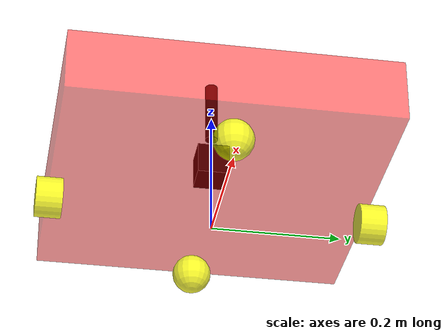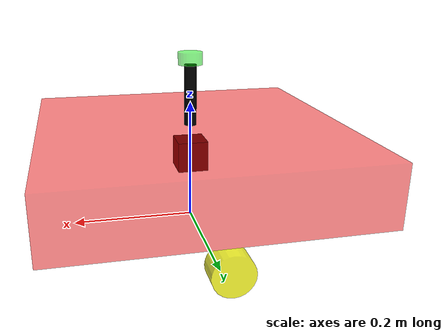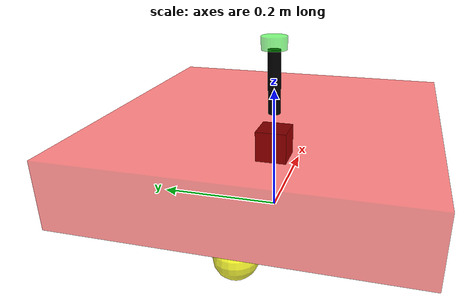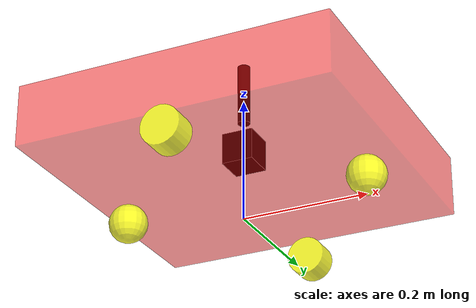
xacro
<?xml version="1.0"?>

<robot name="fishbot" xmlns:xacro="http://www.ros.org/wiki/xacro">

    <!-- 包含机器人的身体部件 -->
    <xacro:include filename="base.xacro"/>
    <xacro:include filename="imu.xacro"/>
    <xacro:include filename="laser.xacro"/>
    <xacro:include filename="drive_wheel.xacro"/>
    <xacro:include filename="caster_wheel.xacro"/>
    <xacro:include filename="fishbot.ros2_control.xacro"/>

    <!-- 调用宏 -->
    <xacro:base_xacro length="0.5" width="0.5" height="0.1"/> <!-- 机器人的身体部件 -->
    <xacro:imu_xacro xyz = "0 0 0"/> <!-- 机器人的IMU部件 -->
    <xacro:laser_xacro xyz = "0 0 0.1"/> <!-- 机器人的激光雷达部件 -->
    <xacro:drive_wheel_xacro wheel_name="left_wheel"   xyz = "0  0.25 -0.081"/> <!-- 左驱动轮，侧边中心 -->
    <xacro:drive_wheel_xacro wheel_name="right_wheel"  xyz = "0 -0.25 -0.081"/> <!-- 右驱动轮，侧边中心 -->
    <xacro:caster_wheel_xacro wheel_name="front_caster" xyz = " 0.2 0 -0.081"/> <!-- 前万向轮 -->
    <xacro:caster_wheel_xacro wheel_name="rear_caster"  xyz = "-0.2 0 -0.081"/> <!-- 后万向轮 -->

    <xacro:fishbot_ros2_control/>

    <!-- ==================== ros2_control 驱动插件 ==================== -->
    <gazebo>
        <plugin
            filename="libgz_ros2_control-system.so"
            name="gz_ros2_control::GazeboSimROS2ControlPlugin">
            <parameters>$(find robot_simulation)/config/ros2_control_params.yaml</parameters> <!--启动controller manager时加载的参数文件 -->
        </plugin>
    </gazebo>

    <!-- ==================== 差速驱动插件（已废弃，改用 ros2_control） ==================== -->

</robot>

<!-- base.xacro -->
<robot xmlns:xacro="http://www.ros.org/wiki/xacro">
    <xacro:macro name = "base_xacro" params = "length width height">
        <!-- 机器人的身体部件 -->
        <link name = "base_link">
            <!-- 部件的外观描述 -->
            <visual>
                <!-- 相对于它所属 link 原点的位置偏移 -->
                <origin xyz="0 0 0" rpy="0 0 0"/>
                <!-- 几何形状 -->
                <geometry>
                    <box size="${length} ${width} ${height}"/>   <!-- 长lengthm 宽widthm 高heightm -->
                </geometry>
                <!-- 材质颜色 -->
                <material name="red">
                    <color rgba="1 0 0 0.5"/>    <!-- 红 绿 蓝 透明度，范围0~1 -->
                </material>
            </visual>
             <!-- 碰撞体积 (与visual几何一致) -->
            <collision>
                <origin xyz="0 0 0" rpy="0 0 0"/>
                <geometry>
                    <box size="${length} ${width} ${height}"/>
                </geometry>
            </collision>
            <!-- 惯性 (质量与转动惯量，Gazebo仿真必需) -->
            <inertial>
                <mass value="5"/>
                <!-- 长方体转动惯量: Ixx=m/12*(y²+z²), Iyy=m/12*(x²+z²), Izz=m/12*(x²+y²) -->
                <inertia ixx="${5.0/12.0 * (width*width + height*height)}"
                         iyy="${5.0/12.0 * (length*length + height*height)}"
                         izz="${5.0/12.0 * (length*length + width*width)}"
                         ixy="0" ixz="0" iyz="0"/>
            </inertial>
        </link>

    <!-- 添加虚拟部件，使机器人轮子贴合地面 -->
    <link name = "base_footprint"/>

    <joint name = "base_footprint_joint" type = "fixed">
        <parent link = "base_footprint"/>
        <child link = "base_link"/>
        <origin xyz="0 0 0.112" rpy="0 0 0"/> <!-- base_link 在 base_footprint 上方 0.112m，轮子恰好贴地 -->
    </joint>

    </xacro:macro>
</robot>

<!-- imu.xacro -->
<robot xmlns:xacro="http://www.ros.org/wiki/xacro">
    <xacro:macro name = "imu_xacro" params = "xyz">
        <!-- 机器人的IMU部件 -->
        <link name = "imu_link">
            <!-- 部件的外观描述 -->
            <visual>
                <!-- 相对于它所属 link 原点的位置偏移 -->
                <origin xyz="0 0 0" rpy="0 0 0"/>
                <!-- 几何形状 -->
                <geometry>
                    <box size="0.05 0.05 0.05"/>
                </geometry>
                <!-- 材质颜色 -->
                <material name="black">
                    <color rgba="0 0 0 1"/>
                </material>
            </visual>
            <!-- 碰撞体积 (与visual几何一致) -->
            <collision>
                <origin xyz="0 0 0" rpy="0 0 0"/>
                <geometry>
                    <box size="0.05 0.05 0.05"/>
                </geometry>
            </collision>
            <!-- 惯性 (质量与转动惯量，Gazebo仿真必需) -->
            <inertial>
                <mass value="0.01"/>
                <!-- 正方体转动惯量: I = m/12*(a²+b²), 0.05³, m=0.01 -->
                <inertia ixx="0.00000417" iyy="0.00000417" izz="0.00000417"
                         ixy="0" ixz="0" iyz="0"/>
            </inertial>
        </link>

        <!-- 将IMU部件固定到机器人身体部件 -->
        <joint name = "imu_link_joint" type = "fixed">
            <parent link = "base_link"/>
            <child link = "imu_link"/>
            <origin xyz="${xyz}" rpy="0 0 0"/> <!-- child(imu_link) 相对于 parent(base_link) 的偏移 -->
        </joint>
    </xacro:macro>
</robot>

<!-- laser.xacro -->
<robot xmlns:xacro="http://www.ros.org/wiki/xacro">
    <xacro:macro name = "laser_xacro" params = "xyz">
        <!-- 雷达支撑杆部件 -->
        <link name = "laser_cylinder_link">
            <!-- 部件的外观描述 -->
            <visual>
                <!-- 相对于它所属 link 原点的位置偏移 -->
                <origin xyz="0 0 0" rpy="0 0 0"/>
                <!-- 几何形状 -->
                <geometry>
                    <cylinder radius = "0.01" length = "0.1"/>  <!-- 圆柱体：半径0.01m 高0.1m -->
                </geometry>
                <!-- 材质颜色 -->
                <material name="black">
                    <color rgba="0 0 0 1.0"/>
                </material>
            </visual>
            <!-- 碰撞体积 (与visual几何一致) -->
            <collision>
                <origin xyz="0 0 0" rpy="0 0 0"/>
                <geometry>
                    <cylinder radius="0.01" length="0.1"/>
                </geometry>
            </collision>
            <!-- 惯性 (质量与转动惯量，Gazebo仿真必需) -->
            <inertial>
                <mass value="0.1"/>
                <!-- 圆柱体转动惯量 (轴z: Izz=mr²/2, Ixx=Iyy=m(3r²+l²)/12, r=0.01, l=0.1) -->
                <inertia ixx="0.0000858" iyy="0.0000858" izz="0.000005"
                         ixy="0" ixz="0" iyz="0"/>
            </inertial>
        </link>

        <!-- 雷达部件 -->
        <link name = "laser_link">
            <!-- 部件的外观描述 -->
            <visual>
                <!-- 相对于它所属 link 原点的位置偏移 -->
                <origin xyz="0 0 0" rpy="0 0 0"/>
                <!-- 几何形状 -->
                <geometry>
                    <cylinder radius = "0.02" length = "0.02"/>  <!-- 圆柱体：半径0.02m 高0.02m -->
                </geometry>
                <!-- 材质颜色 -->
                <material name="green">
                    <color rgba="0 1 0 0.5"/>
                </material>
            </visual>
            <!-- 碰撞体积 (与visual几何一致) -->
            <collision>
                <origin xyz="0 0 0" rpy="0 0 0"/>
                <geometry>
                    <cylinder radius="0.02" length="0.02"/>
                </geometry>
            </collision>
            <!-- 惯性 (质量与转动惯量，Gazebo仿真必需) -->
            <inertial>
                <mass value="0.2"/>
                <!-- 圆柱体转动惯量 (轴z: Izz=mr²/2, Ixx=Iyy=m(3r²+l²)/12, r=0.02, l=0.02) -->
                <inertia ixx="0.0000267" iyy="0.0000267" izz="0.00004"
                         ixy="0" ixz="0" iyz="0"/>
            </inertial>
        </link>

        <!-- 将雷达固定到支撑杆 -->
        <joint name = "laser_joint" type = "fixed">
            <parent link = "laser_cylinder_link"/>
            <child link = "laser_link"/>
            <origin xyz="0 0 0.06" rpy="0 0 0"/> <!-- child(laser_link) 相对于 parent(laser_cylinder_link) 的偏移 -->
        </joint>

        <!-- 将雷达支撑杆固定到机器人身体 -->
        <joint name = "laser_cylinder_joint" type = "fixed">
            <parent link = "base_link"/>
            <child link = "laser_cylinder_link"/>
            <origin xyz="${xyz}" rpy="0 0 0"/> <!-- child(laser_cylinder_link) 相对于 parent(base_link) 的偏移 -->
        </joint>
        <gazebo reference="laser_cylinder_link">
            <visual>
                <material>
                    <ambient>0 0 1 1</ambient>
                    <diffuse>0 0 1 1</diffuse>
                    <specular>0.1 0.1 0.1 1</specular>
                    <emissive>0 0 0 1</emissive>
                </material>
            </visual>
        </gazebo>
        <gazebo reference="laser_link">
            <visual>
                <material>
                    <ambient>0 0 1 1</ambient>
                    <diffuse>0 0 1 1</diffuse>
                    <specular>0.1 0.1 0.1 1</specular>
                    <emissive>0 0 0 1</emissive>
                </material>
            </visual>
        </gazebo>
        <gazebo reference="laser_link">
            <sensor type="gpu_lidar" name="laser_sensor">
                <pose>0 0 0.15 0 0 0</pose>
                <topic>scan</topic>
                <update_rate>30</update_rate>
                <always_on>1</always_on>
                <visualize>true</visualize>
                <ray>
                    <scan>
                        <horizontal>
                            <samples>720</samples>
                            <resolution>1</resolution>
                            <min_angle>-3.1415</min_angle>
                            <max_angle>3.1415</max_angle>
                        </horizontal>
                    </scan>
                    <range>
                        <min>0.12</min>
                        <max>10.0</max>
                        <resolution>0.01</resolution>
                    </range>
                    <noise>
                        <type>gaussian</type>
                        <mean>0.0</mean>
                        <stddev>0.0</stddev>
                    </noise>
                </ray>
            </sensor>
        </gazebo>
    </xacro:macro>
</robot>

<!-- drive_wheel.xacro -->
<robot xmlns:xacro="http://www.ros.org/wiki/xacro">
    <xacro:macro name = "drive_wheel_xacro" params = "wheel_name xyz">
        <link name = "${wheel_name}_link">
            <!-- 部件的外观描述 -->
            <visual>
                <!-- 相对于它所属 link 原点的位置偏移 -->
                <!-- 1.5708弧度，表示绕X轴旋转90度，把竖直的圆柱体放平成轮子 -->
                <origin xyz="0 0 0" rpy="1.5708 0 0"/>
                <!-- 几何形状 -->
                <geometry>
                    <cylinder radius="0.031" length="0.04"/>   <!-- 半径0.031m 高0.04m -->
                </geometry>
                <!-- 材质颜色 -->
                <material name="yellow">
                    <color rgba="1 1 0 0.8"/>    <!-- 红 绿 蓝 透明度，范围0~1 -->
                </material>
            </visual>
            <!-- 碰撞体积 (与visual几何一致) -->
            <collision>
                <origin xyz="0 0 0" rpy="1.5708 0 0"/>
                <geometry>
                    <cylinder radius="0.031" length="0.04"/>
                </geometry>
            </collision>
            <!-- 惯性 (质量与转动惯量，Gazebo仿真必需) -->
            <inertial>
                <mass value="0.1"/>
                <!-- 圆柱体转动惯量 (r=0.031, l=0.04, 轴y: Iyy=mr²/2, Ixx=Izz=m(3r²+l²)/12) -->
                <inertia ixx="0.0000374" iyy="0.0000481" izz="0.0000374"
                         ixy="0" ixz="0" iyz="0"/>
            </inertial>
        </link>
        <joint name = "${wheel_name}_joint" type = "continuous">
            <parent link = "base_link"/>
            <child link = "${wheel_name}_link"/>
            <origin xyz="${xyz}" rpy="0 0 0"/> <!-- child(${${wheel_name}_link) 相对于 parent(base_link) 的偏移 -->
            <axis xyz="0 1 0"/> <!-- 轴向为y轴 -->
        </joint>
        <!-- Gazebo Fortress 驱动轮接触物理参数，防打滑陷地 -->
        <gazebo reference="${wheel_name}_link">
            <collision>
                <surface>
                    <contact>
                        <ode>
                            <mu>20.0</mu>     <!-- 滚动方向摩擦系数，越大越不打滑 -->
                            <mu2>20.0</mu2>   <!-- 横向侧滑摩擦系数 -->
                            <kp>10000000000.0</kp> <!-- 接触刚度，轮子硬度 -->
                            <kd>1.0</kd>      <!-- 接触阻尼，落地缓冲 -->
                        </ode>
                    </contact>
                </surface>
            </collision>
        </gazebo>
    </xacro:macro>
</robot>

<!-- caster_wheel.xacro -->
<robot xmlns:xacro="http://www.ros.org/wiki/xacro">
    <xacro:macro name = "caster_wheel_xacro" params = "wheel_name xyz">
        <link name = "${wheel_name}_link">
            <!-- 部件的外观描述 -->
            <visual>
                <!-- 相对于它所属 link 原点的位置偏移 -->
                <origin xyz="0 0 0" rpy="0 0 0"/>
                <!-- 几何形状 -->
                <geometry>
                    <sphere radius="0.031"/>   <!-- 半径0.031m -->
                </geometry>
                <!-- 材质颜色 -->
                <material name="yellow">
                    <color rgba="1 1 0 0.8"/>    <!-- 红 绿 蓝 透明度，范围0~1 -->
                </material>
            </visual>
            <!-- 碰撞体积 (与visual几何一致) -->
            <collision>
                <origin xyz="0 0 0" rpy="0 0 0"/>
                <geometry>
                    <sphere radius="0.031"/>
                </geometry>
            </collision>
            <!-- 惯性 (质量与转动惯量，Gazebo仿真必需) -->
            <inertial>
                <mass value="0.05"/>
                <!-- 球体转动惯量: I = 2/5*m*r², r=0.031, m=0.05 -->
                <inertia ixx="0.0000192" iyy="0.0000192" izz="0.0000192"
                         ixy="0" ixz="0" iyz="0"/>
            </inertial>
        </link>
        <joint name = "${wheel_name}_joint" type = "fixed">
            <parent link = "base_link"/>
            <child link = "${wheel_name}_link"/>
            <origin xyz="${xyz}" rpy="0 0 0"/> <!-- child(${${wheel_name}_link) 相对于 parent(base_link) 的偏移 -->
        </joint>
        <!-- Gazebo Fortress 万向轮接触物理参数，无摩擦可自由滑动 -->
        <gazebo reference="${wheel_name}_link">
            <collision>
                <surface>
                    <contact>
                        <ode>
                            <mu>0.0</mu>      <!-- 滚动摩擦为0，万向轮无阻力 -->
                            <mu2>0.0</mu2>    <!-- 侧滑摩擦为0，万向轮可自由转向 -->
                            <kp>10000000000.0</kp> <!-- 接触刚度，避免陷地 -->
                            <kd>1.0</kd>      <!-- 接触阻尼，落地缓冲 -->
                        </ode>
                    </contact>
                </surface>
            </collision>
        </gazebo>
    </xacro:macro>
</robot>
